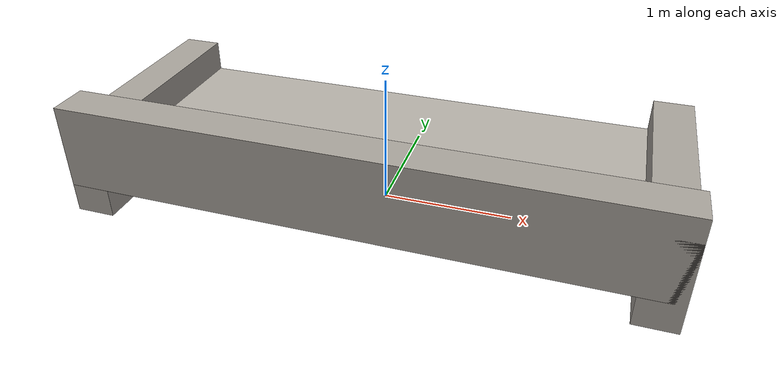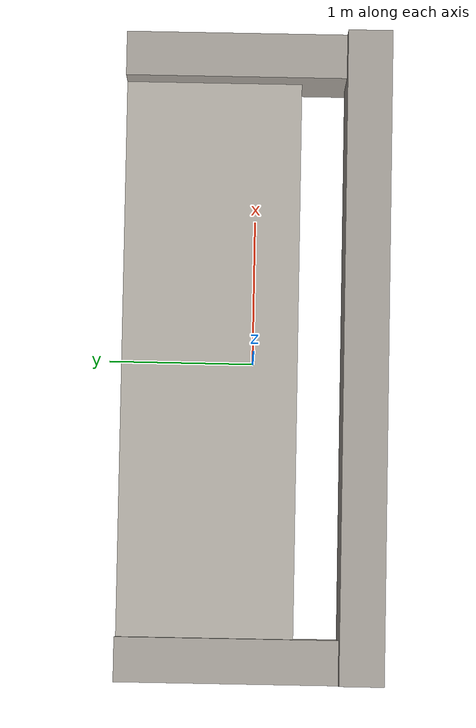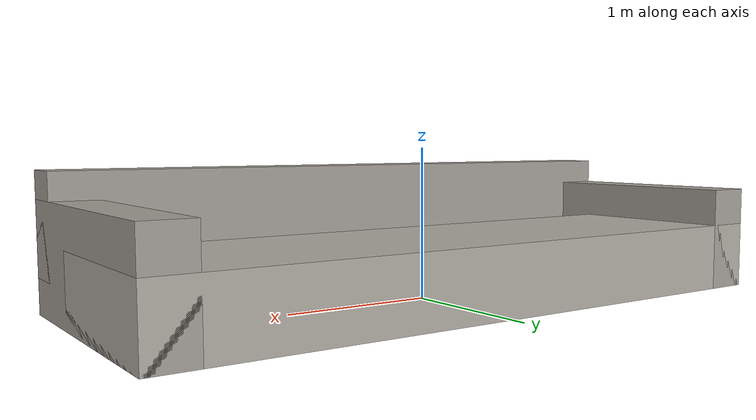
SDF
<?xml version="1.0" ?>
<sdf version="1.7">
  <model name="couch">
    <static>true</static>

    <!-- Seat cushion -->
    <link name="seat">
      <pose>0 0.30 0.225 0 0 0</pose>
      <collision name="collision">
        <geometry><box><size>4.40 1.20 0.45</size></box></geometry>
      </collision>
      <visual name="visual">
        <geometry><box><size>4.40 1.20 0.45</size></box></geometry>
        <material>
          <ambient>0.70 0.68 0.65 1</ambient>
          <diffuse>0.70 0.68 0.65 1</diffuse>
          <specular>0.03 0.03 0.03 1</specular>
        </material>
      </visual>
    </link>

    <!-- Backrest -->
    <link name="backrest">
      <pose>0 -0.75 0.55 0 0 0</pose>
      <collision name="collision">
        <geometry><box><size>4.40 0.30 0.65</size></box></geometry>
      </collision>
      <visual name="visual">
        <geometry><box><size>4.40 0.30 0.65</size></box></geometry>
        <material>
          <ambient>0.65 0.63 0.60 1</ambient>
          <diffuse>0.65 0.63 0.60 1</diffuse>
          <specular>0.03 0.03 0.03 1</specular>
        </material>
      </visual>
    </link>

    <!-- Left armrest -->
    <link name="armrest_left">
      <pose>-2.05 0 0.35 0 0 0</pose>
      <collision name="collision">
        <geometry><box><size>0.30 1.80 0.70</size></box></geometry>
      </collision>
      <visual name="visual">
        <geometry><box><size>0.30 1.80 0.70</size></box></geometry>
        <material>
          <ambient>0.65 0.63 0.60 1</ambient>
          <diffuse>0.65 0.63 0.60 1</diffuse>
          <specular>0.03 0.03 0.03 1</specular>
        </material>
      </visual>
    </link>

    <!-- Right armrest -->
    <link name="armrest_right">
      <pose>2.05 0 0.35 0 0 0</pose>
      <collision name="collision">
        <geometry><box><size>0.30 1.80 0.70</size></box></geometry>
      </collision>
      <visual name="visual">
        <geometry><box><size>0.30 1.80 0.70</size></box></geometry>
        <material>
          <ambient>0.65 0.63 0.60 1</ambient>
          <diffuse>0.65 0.63 0.60 1</diffuse>
          <specular>0.03 0.03 0.03 1</specular>
        </material>
      </visual>
    </link>

  </model>
</sdf>
